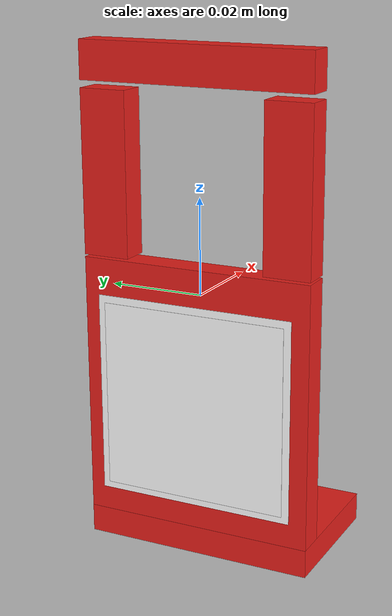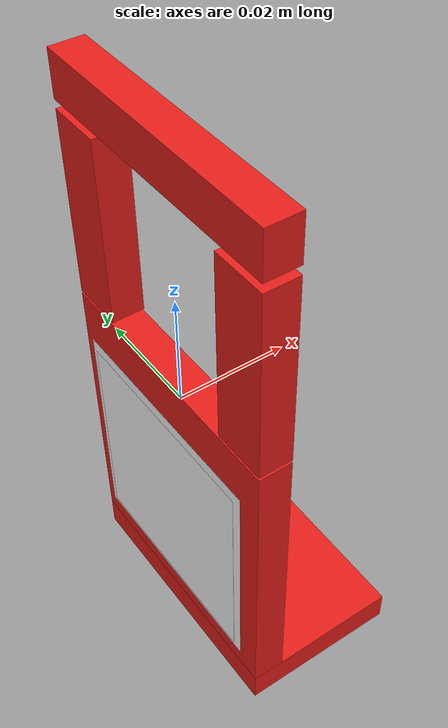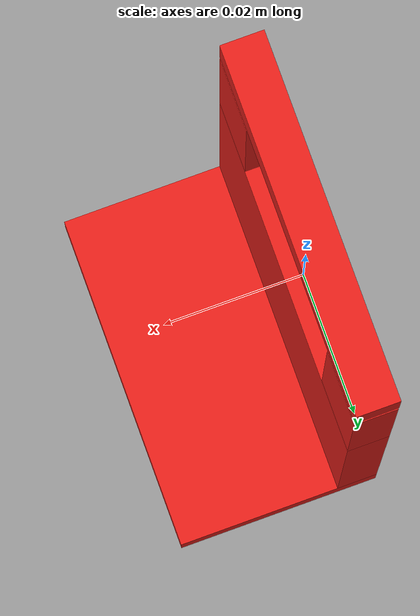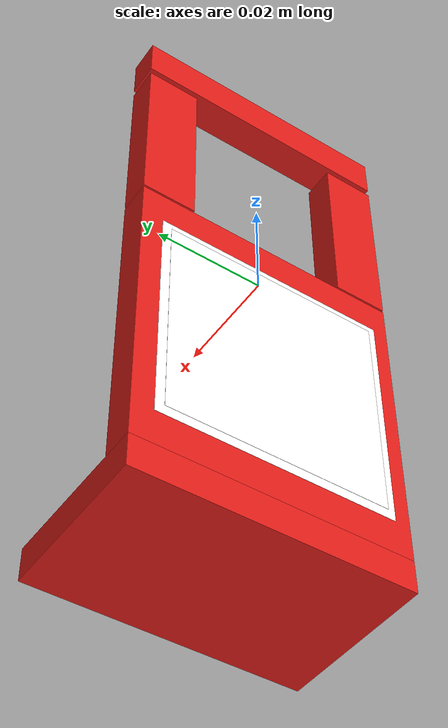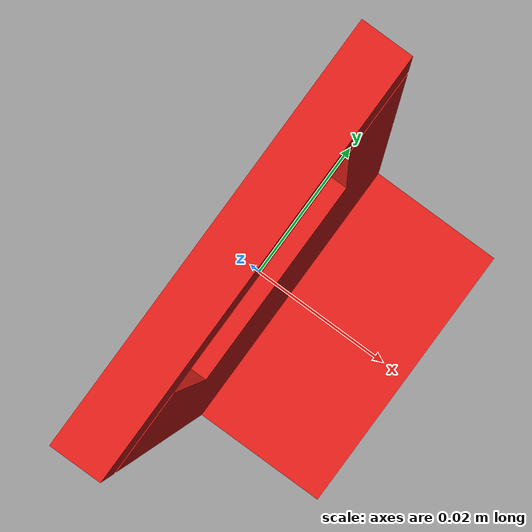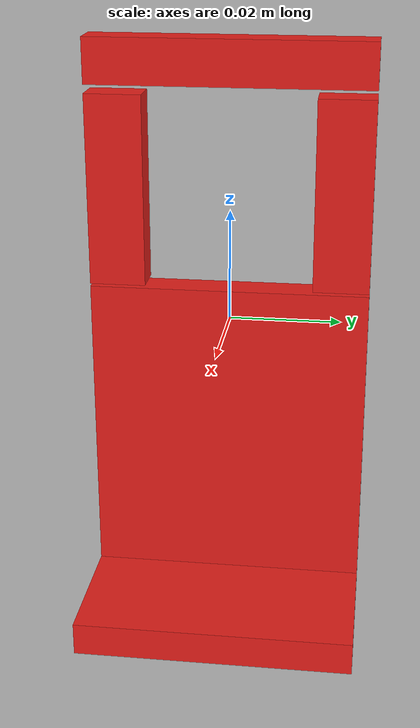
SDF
<?xml version="1.0"?>
<sdf version="1.9">
  <model name="kki_payload_A">
    <static>false</static>
    <self_collide>false</self_collide>
    <allow_auto_disable>true</allow_auto_disable>
    <link name="payload_link">
      <inertial>
        <mass>0.20</mass>
        <inertia>
          <ixx>0.00022</ixx>
          <ixy>0</ixy>
          <ixz>0</ixz>
          <iyy>0.00018</iyy>
          <iyz>0</iyz>
          <izz>0.00006</izz>
        </inertia>
      </inertial>
      <velocity_decay>
        <linear>1.8</linear>
        <angular>2.4</angular>
      </velocity_decay>

      <collision name="plate_lower_collision">
        <pose>0 0 -0.022 0 0 0</pose>
        <geometry><box><size>0.006 0.050 0.056</size></box></geometry>
        <surface>
          <friction><ode><mu>1.7</mu><mu2>1.7</mu2><slip1>0.02</slip1><slip2>0.02</slip2></ode></friction>
          <bounce><restitution_coefficient>0.0</restitution_coefficient><threshold>1000</threshold></bounce>
          <contact><ode><kp>30000</kp><kd>80</kd></ode></contact>
        </surface>
      </collision>
      <collision name="plate_top_collision">
        <pose>0 0 0.046 0 0 0</pose>
        <geometry><box><size>0.006 0.050 0.008</size></box></geometry>
        <surface>
          <friction><ode><mu>1.7</mu><mu2>1.7</mu2><slip1>0.02</slip1><slip2>0.02</slip2></ode></friction>
          <bounce><restitution_coefficient>0.0</restitution_coefficient><threshold>1000</threshold></bounce>
          <contact><ode><kp>30000</kp><kd>80</kd></ode></contact>
        </surface>
      </collision>
      <collision name="plate_left_hole_side_collision">
        <pose>0 -0.020 0.0235 0 0 0</pose>
        <geometry><box><size>0.006 0.010 0.034</size></box></geometry>
        <surface>
          <friction><ode><mu>1.7</mu><mu2>1.7</mu2><slip1>0.02</slip1><slip2>0.02</slip2></ode></friction>
          <bounce><restitution_coefficient>0.0</restitution_coefficient><threshold>1000</threshold></bounce>
          <contact><ode><kp>30000</kp><kd>80</kd></ode></contact>
        </surface>
      </collision>
      <collision name="plate_right_hole_side_collision">
        <pose>0 0.020 0.0235 0 0 0</pose>
        <geometry><box><size>0.006 0.010 0.034</size></box></geometry>
        <surface>
          <friction><ode><mu>1.7</mu><mu2>1.7</mu2><slip1>0.02</slip1><slip2>0.02</slip2></ode></friction>
          <bounce><restitution_coefficient>0.0</restitution_coefficient><threshold>1000</threshold></bounce>
          <contact><ode><kp>30000</kp><kd>80</kd></ode></contact>
        </surface>
      </collision>
      <collision name="base_foot_collision">
        <pose>0.012 0 -0.053 0 0 0</pose>
        <geometry><box><size>0.030 0.050 0.006</size></box></geometry>
        <surface>
          <friction><ode><mu>1.9</mu><mu2>1.9</mu2><slip1>0.015</slip1><slip2>0.015</slip2></ode></friction>
          <bounce><restitution_coefficient>0.0</restitution_coefficient><threshold>1000</threshold></bounce>
          <contact><ode><kp>35000</kp><kd>90</kd></ode></contact>
        </surface>
      </collision>

      <visual name="plate_lower_visual">
        <pose>0 0 -0.022 0 0 0</pose>
        <geometry><box><size>0.006 0.050 0.056</size></box></geometry>
        <material>
          <ambient>0.90 0.12 0.10 1</ambient>
          <diffuse>0.90 0.12 0.10 1</diffuse>
        </material>
      </visual>
      <visual name="plate_top_visual">
        <pose>0 0 0.046 0 0 0</pose>
        <geometry><box><size>0.006 0.050 0.008</size></box></geometry>
        <material>
          <ambient>0.90 0.12 0.10 1</ambient>
          <diffuse>0.90 0.12 0.10 1</diffuse>
        </material>
      </visual>
      <visual name="plate_left_hole_side_visual">
        <pose>0 -0.020 0.0235 0 0 0</pose>
        <geometry><box><size>0.006 0.010 0.034</size></box></geometry>
        <material>
          <ambient>0.90 0.12 0.10 1</ambient>
          <diffuse>0.90 0.12 0.10 1</diffuse>
        </material>
      </visual>
      <visual name="plate_right_hole_side_visual">
        <pose>0 0.020 0.0235 0 0 0</pose>
        <geometry><box><size>0.006 0.010 0.034</size></box></geometry>
        <material>
          <ambient>0.90 0.12 0.10 1</ambient>
          <diffuse>0.90 0.12 0.10 1</diffuse>
        </material>
      </visual>
      <visual name="base_foot_visual">
        <pose>0.012 0 -0.053 0 0 0</pose>
        <geometry><box><size>0.030 0.050 0.006</size></box></geometry>
        <material>
          <ambient>0.90 0.12 0.10 1</ambient>
          <diffuse>0.90 0.12 0.10 1</diffuse>
        </material>
      </visual>
      <visual name="qr_white_backing">
        <pose>-0.0038 0 -0.023 0 -1.5708 0</pose>
        <geometry>
          <plane>
            <normal>0 0 1</normal>
            <size>0.043 0.043</size>
          </plane>
        </geometry>
        <material>
          <ambient>1 1 1 1</ambient>
          <diffuse>1 1 1 1</diffuse>
        </material>
      </visual>
      <visual name="qr_side">
        <pose>-0.0041 0 -0.023 0 -1.5708 0</pose>
        <geometry>
          <plane>
            <normal>0 0 1</normal>
            <size>0.040 0.040</size>
          </plane>
        </geometry>
        <material>
          <ambient>1 1 1 1</ambient>
          <diffuse>1 1 1 1</diffuse>
          <pbr>
            <metal>
              <albedo_map>model://kki_payload_A/materials/textures/qr_A.png</albedo_map>
            </metal>
          </pbr>
        </material>
      </visual>
    </link>
  </model>
</sdf>
